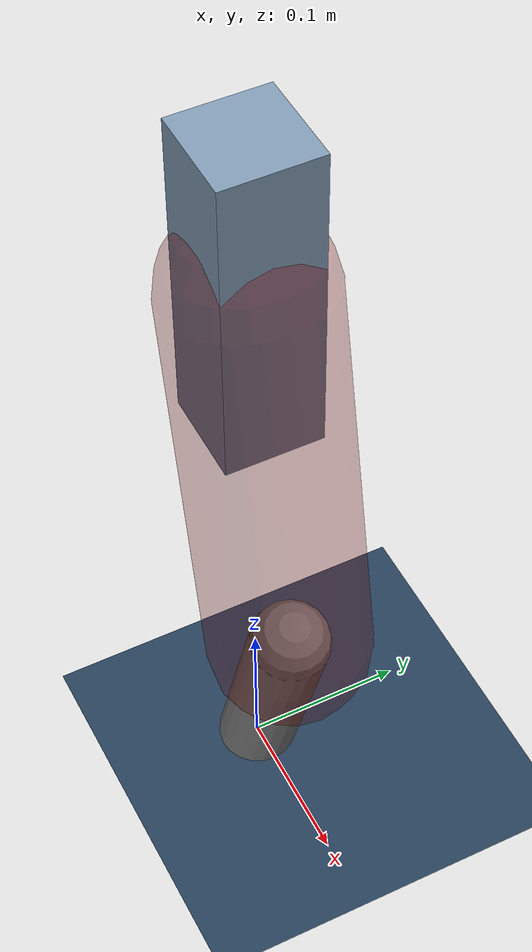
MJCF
<mujoco model="Hopper2D">
	<compiler inertiafromgeom="true" angle="radian" />
	<option timestep="0.001" integrator="implicit" cone="elliptic" solver="Newton" tolerance="1e-10" />

	<default>
		<geom contype="1" conaffinity="1" condim="3" friction="2 0.005 0.0001" solref="0.005 1" />
		<joint limited="true" damping="0.1" />
	</default>

	<asset>
		<texture name="skybox" type="skybox" builtin="gradient" rgb1=".4 .6 .8" rgb2="0 0 0" width="800" height="800" />
		<texture name="grid" type="2d" builtin="checker" rgb1=".1 .2 .3" rgb2=".2 .3 .4" width="300" height="300" mark="edge" markrgb=".2 .3 .4" />
		<material name="ground" texture="grid" texrepeat="1 1" texuniform="true" reflectance="0.1" />
		<material name="leg" rgba="0.5 0.6 0.7 1" />
	</asset>

	<worldbody>

		<geom name="floor" type="plane" size="5 5 0.25" material="ground" />

		<light directional="false" diffuse="0.8 0.8 0.8" specular="0.3 0.3 0.3" pos="0 0 2" dir="0 0 -1" />
		<light mode="targetbodycom" target="base" directional="false" diffuse="0.8 0.8 0.8" specular="0.3 0.3 0.3" pos="0 0 2" dir="0 0 -1" />

		<camera name="fixed" pos="0 -2 1" xyaxes="1 0 0 0 0 1" />
		<camera name="tracking" mode="trackcom" pos="0 -3 1" />

		<body name="root" pos="0 0 0.4029843203828035">
			<joint name="slide_x" type="slide" axis="1 0 0" range="-100 100" />
			<joint name="slide_z" type="slide" axis="0 0 1" range="0 10" />

			<body name="base" pos="0 0 0">
				<geom name="torso" type="box" size="0.03 0.03 0.1" mass="2.598" material="leg" />

				<body name="link1" pos="0 0 0" euler="0 1.3808958202758128 0">
					<joint type="hinge" axis="0 -1 0" pos="0 0 0" name="hinge1" limited="true" range="-3.14 3.14" stiffness="0" damping="0.1" />
					<geom name="thigh" type="capsule" fromto="0 0 0 0.252496090702147 0 0" size="0.05" rgba="0.5 0 0 0.3" mass="0.8628898358255822" />

					<body name="link2" pos="0.252496090702147 0 0" euler="0 0.4881680826760484 0">
						<joint type="hinge" axis="0 -1 0" pos="0 0 0" name="hinge2" limited="true" range="-3.14 3.14" stiffness="0" damping="0.1" />
						<geom name="shank" type="capsule" fromto="0 0 0 0.16218844987075376 0 0" size="0.025" mass="0.36846960488367836" />

					</body>
				</body>
			</body>
		</body>
	</worldbody>

	<actuator>
		<motor name="torque1" joint="hinge1" ctrlrange="-126.61113970113931 126.61113970113931" ctrllimited="true" gear="1" />
		<motor name="torque2" joint="hinge2" ctrlrange="-12.953329788775369 12.953329788775369" ctrllimited="true" gear="1" />
	</actuator>
</mujoco>
